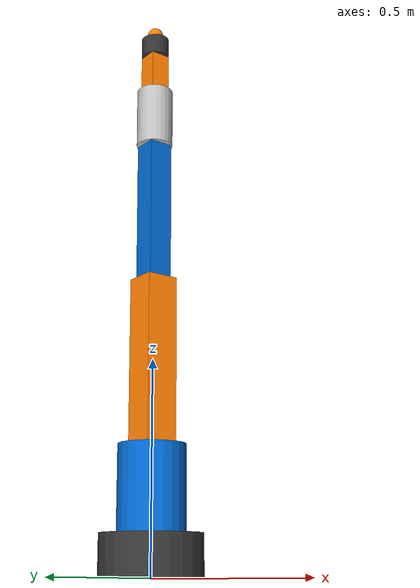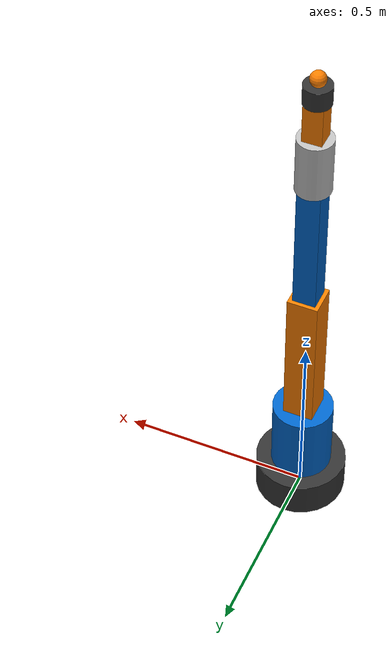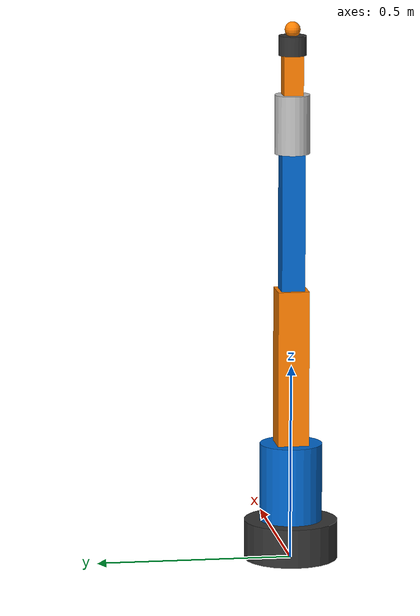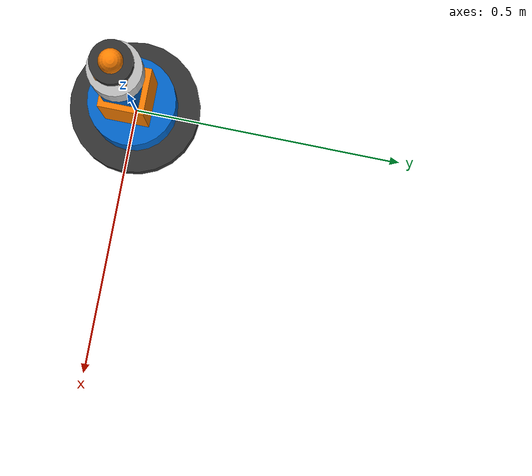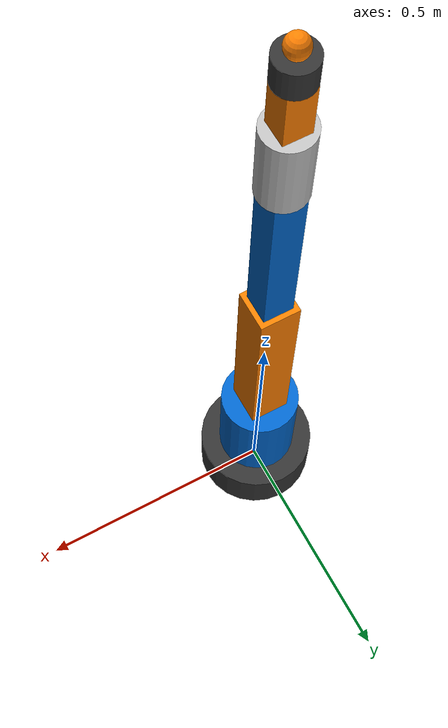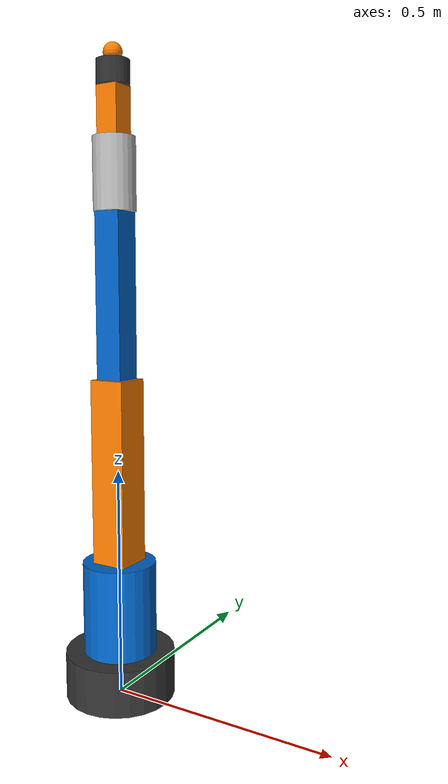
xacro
<?xml version="1.0"?>
<robot xmlns:xacro="http://www.ros.org/wiki/xacro" name="robot_arm">

  <!-- Materials -->
  <material name="dark_gray">
    <color rgba="0.2 0.2 0.2 1.0"/>
  </material>
  <material name="blue">
    <color rgba="0.0 0.4 0.8 1.0"/>
  </material>
  <material name="orange">
    <color rgba="1.0 0.5 0.0 1.0"/>
  </material>
  <material name="silver">
    <color rgba="0.75 0.75 0.75 1.0"/>
  </material>

  <!-- World Link -->
  <link name="world"/>

  <!-- Base Link -->
  <joint name="world_to_base" type="fixed">
    <parent link="world"/>
    <child link="base_link"/>
    <origin xyz="0 0 0" rpy="0 0 0"/>
  </joint>

  <link name="base_link">
    <visual>
      <origin xyz="0 0 0.05" rpy="0 0 0"/>
      <geometry>
        <cylinder radius="0.12" length="0.1"/>
      </geometry>
      <material name="dark_gray"/>
    </visual>
    <collision>
      <origin xyz="0 0 0.05" rpy="0 0 0"/>
      <geometry>
        <cylinder radius="0.12" length="0.1"/>
      </geometry>
    </collision>
    <inertial>
      <mass value="5.0"/>
      <origin xyz="0 0 0.05" rpy="0 0 0"/>
      <inertia ixx="0.022" ixy="0.0" ixz="0.0" iyy="0.022" iyz="0.0" izz="0.036"/>
    </inertial>
  </link>

  <!-- Joint 1: Base rotation (Z axis) -->
  <joint name="joint1" type="revolute">
    <parent link="base_link"/>
    <child link="link1"/>
    <origin xyz="0 0 0.1" rpy="0 0 0"/>
    <axis xyz="0 0 1"/>
    <limit lower="-3.14159" upper="3.14159" effort="100.0" velocity="2.0"/>
    <dynamics damping="0.5" friction="0.1"/>
  </joint>

  <link name="link1">
    <visual>
      <origin xyz="0 0 0.1" rpy="0 0 0"/>
      <geometry>
        <cylinder radius="0.08" length="0.2"/>
      </geometry>
      <material name="blue"/>
    </visual>
    <collision>
      <origin xyz="0 0 0.1" rpy="0 0 0"/>
      <geometry>
        <cylinder radius="0.08" length="0.2"/>
      </geometry>
    </collision>
    <inertial>
      <mass value="3.0"/>
      <origin xyz="0 0 0.1" rpy="0 0 0"/>
      <inertia ixx="0.015" ixy="0.0" ixz="0.0" iyy="0.015" iyz="0.0" izz="0.0096"/>
    </inertial>
  </link>

  <!-- Joint 2: Shoulder pitch (Y axis) -->
  <joint name="joint2" type="revolute">
    <parent link="link1"/>
    <child link="link2"/>
    <origin xyz="0 0 0.2" rpy="0 0 0"/>
    <axis xyz="0 1 0"/>
    <limit lower="-3.14159" upper="3.14159" effort="100.0" velocity="2.0"/>
    <dynamics damping="0.5" friction="0.1"/>
  </joint>

  <link name="link2">
    <visual>
      <origin xyz="0 0 0.2" rpy="0 0 0"/>
      <geometry>
        <box size="0.08 0.08 0.4"/>
      </geometry>
      <material name="orange"/>
    </visual>
    <collision>
      <origin xyz="0 0 0.2" rpy="0 0 0"/>
      <geometry>
        <box size="0.08 0.08 0.4"/>
      </geometry>
    </collision>
    <inertial>
      <mass value="2.5"/>
      <origin xyz="0 0 0.2" rpy="0 0 0"/>
      <inertia ixx="0.034" ixy="0.0" ixz="0.0" iyy="0.034" iyz="0.0" izz="0.0026"/>
    </inertial>
  </link>

  <!-- Joint 3: Elbow pitch (Y axis) -->
  <joint name="joint3" type="revolute">
    <parent link="link2"/>
    <child link="link3"/>
    <origin xyz="0 0 0.4" rpy="0 0 0"/>
    <axis xyz="0 1 0"/>
    <limit lower="-3.14159" upper="3.14159" effort="80.0" velocity="2.0"/>
    <dynamics damping="0.3" friction="0.1"/>
  </joint>

  <link name="link3">
    <visual>
      <origin xyz="0 0 0.175" rpy="0 0 0"/>
      <geometry>
        <box size="0.06 0.06 0.35"/>
      </geometry>
      <material name="blue"/>
    </visual>
    <collision>
      <origin xyz="0 0 0.175" rpy="0 0 0"/>
      <geometry>
        <box size="0.06 0.06 0.35"/>
      </geometry>
    </collision>
    <inertial>
      <mass value="2.0"/>
      <origin xyz="0 0 0.175" rpy="0 0 0"/>
      <inertia ixx="0.021" ixy="0.0" ixz="0.0" iyy="0.021" iyz="0.0" izz="0.0012"/>
    </inertial>
  </link>

  <!-- Joint 4: Wrist roll (X axis) -->
  <joint name="joint4" type="revolute">
    <parent link="link3"/>
    <child link="link4"/>
    <origin xyz="0 0 0.35" rpy="0 0 0"/>
    <axis xyz="1 0 0"/>
    <limit lower="-3.14159" upper="3.14159" effort="50.0" velocity="2.5"/>
    <dynamics damping="0.2" friction="0.05"/>
  </joint>

  <link name="link4">
    <visual>
      <origin xyz="0 0 0.075" rpy="0 0 0"/>
      <geometry>
        <cylinder radius="0.045" length="0.15"/>
      </geometry>
      <material name="silver"/>
    </visual>
    <collision>
      <origin xyz="0 0 0.075" rpy="0 0 0"/>
      <geometry>
        <cylinder radius="0.045" length="0.15"/>
      </geometry>
    </collision>
    <inertial>
      <mass value="1.2"/>
      <origin xyz="0 0 0.075" rpy="0 0 0"/>
      <inertia ixx="0.0028" ixy="0.0" ixz="0.0" iyy="0.0028" iyz="0.0" izz="0.0012"/>
    </inertial>
  </link>

  <!-- Joint 5: Wrist pitch (Y axis) -->
  <joint name="joint5" type="revolute">
    <parent link="link4"/>
    <child link="link5"/>
    <origin xyz="0 0 0.15" rpy="0 0 0"/>
    <axis xyz="0 1 0"/>
    <limit lower="-3.14159" upper="3.14159" effort="50.0" velocity="2.5"/>
    <dynamics damping="0.2" friction="0.05"/>
  </joint>

  <link name="link5">
    <visual>
      <origin xyz="0 0 0.05" rpy="0 0 0"/>
      <geometry>
        <box size="0.05 0.05 0.1"/>
      </geometry>
      <material name="orange"/>
    </visual>
    <collision>
      <origin xyz="0 0 0.05" rpy="0 0 0"/>
      <geometry>
        <box size="0.05 0.05 0.1"/>
      </geometry>
    </collision>
    <inertial>
      <mass value="0.8"/>
      <origin xyz="0 0 0.05" rpy="0 0 0"/>
      <inertia ixx="0.0008" ixy="0.0" ixz="0.0" iyy="0.0008" iyz="0.0" izz="0.0003"/>
    </inertial>
  </link>

  <!-- Joint 6: Wrist roll (X axis) -->
  <joint name="joint6" type="revolute">
    <parent link="link5"/>
    <child link="link6"/>
    <origin xyz="0 0 0.1" rpy="0 0 0"/>
    <axis xyz="1 0 0"/>
    <limit lower="-3.14159" upper="3.14159" effort="30.0" velocity="3.0"/>
    <dynamics damping="0.1" friction="0.02"/>
  </joint>

  <link name="link6">
    <visual>
      <origin xyz="0 0 0.025" rpy="0 0 0"/>
      <geometry>
        <cylinder radius="0.035" length="0.05"/>
      </geometry>
      <material name="dark_gray"/>
    </visual>
    <collision>
      <origin xyz="0 0 0.025" rpy="0 0 0"/>
      <geometry>
        <cylinder radius="0.035" length="0.05"/>
      </geometry>
    </collision>
    <inertial>
      <mass value="0.4"/>
      <origin xyz="0 0 0.025" rpy="0 0 0"/>
      <inertia ixx="0.0002" ixy="0.0" ixz="0.0" iyy="0.0002" iyz="0.0" izz="0.0002"/>
    </inertial>
  </link>

  <!-- End Effector -->
  <joint name="joint_end_effector" type="fixed">
    <parent link="link6"/>
    <child link="end_effector"/>
    <origin xyz="0 0 0.05" rpy="0 0 0"/>
  </joint>

  <link name="end_effector">
    <visual>
      <origin xyz="0 0 0.015" rpy="0 0 0"/>
      <geometry>
        <sphere radius="0.02"/>
      </geometry>
      <material name="orange"/>
    </visual>
    <collision>
      <origin xyz="0 0 0.015" rpy="0 0 0"/>
      <geometry>
        <sphere radius="0.02"/>
      </geometry>
    </collision>
    <inertial>
      <mass value="0.1"/>
      <origin xyz="0 0 0.015" rpy="0 0 0"/>
      <inertia ixx="0.00001" ixy="0.0" ixz="0.0" iyy="0.00001" iyz="0.0" izz="0.00001"/>
    </inertial>
  </link>

  <!-- Native Gazebo Sim Joint State Publisher Plugin -->
  <gazebo>
    <plugin filename="gz-sim-joint-state-publisher-system" name="gz::sim::systems::JointStatePublisher">
      <topic>/joint_states</topic>
    </plugin>
  </gazebo>

</robot>
